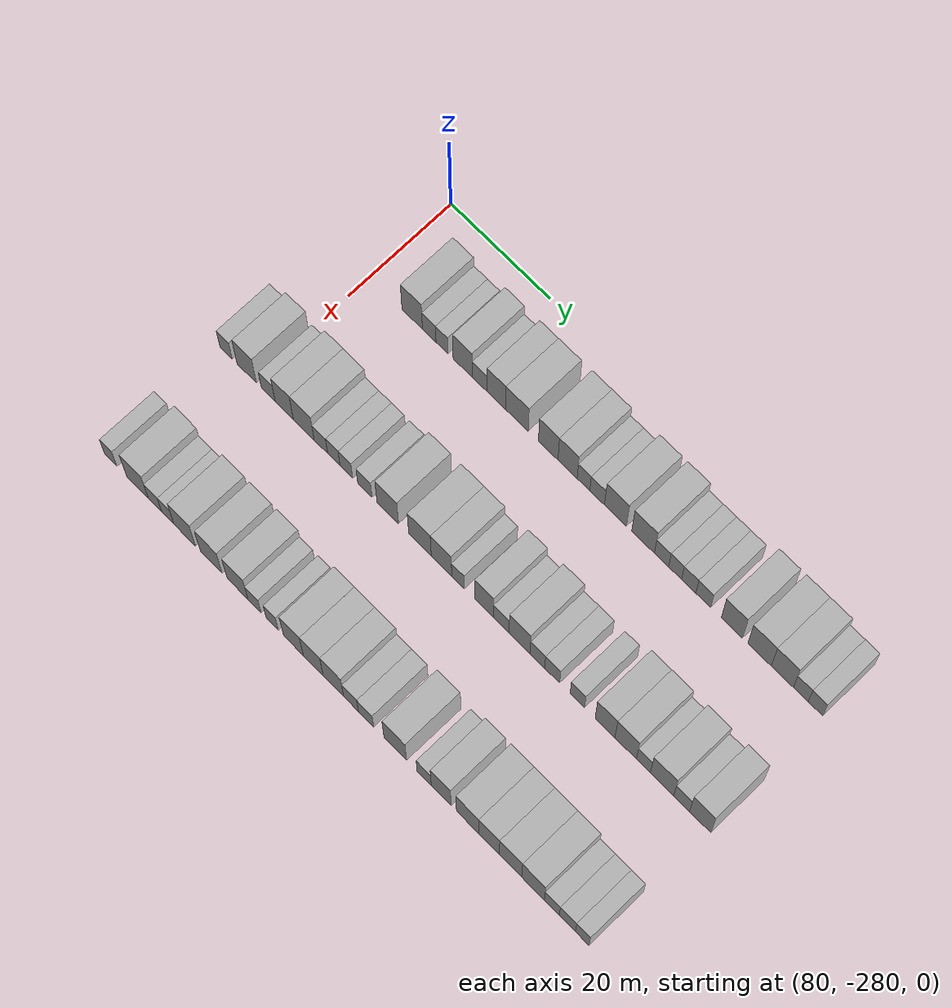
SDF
<sdf version="1.6">
 <world name="default">
  <model name="building_593">
   <static>1</static>
   <pose>91.0000 -271.2294 0 0.000000 0.000000 0.000000</pose>
   <link name="link">
    <pose>0 0 4.50 0 0 0</pose>
    <collision name="collision"><geometry><box><size>10.0000 4.1163 9.0000</size></box></geometry></collision>
    <visual name="visual">
     <cast_shadows>0</cast_shadows>
     <geometry><box><size>10.0000 4.1163 9.0000</size></box></geometry>
     <material>
      <script>
       <uri>model://HANNAS_wall/materials/scripts</uri>
       <uri>model://HANNAS_wall/materials/textures</uri>
       <name>vrc/HANNAS_wall</name>
      </script>
     </material>
    </visual>
   </link>
  </model>
  <model name="building_594">
   <static>1</static>
   <pose>91.0000 -267.8122 0 0.000000 0.000000 0.000000</pose>
   <link name="link">
    <pose>0 0 3.00 0 0 0</pose>
    <collision name="collision"><geometry><box><size>10.0000 2.7181 6.0000</size></box></geometry></collision>
    <visual name="visual">
     <cast_shadows>0</cast_shadows>
     <geometry><box><size>10.0000 2.7181 6.0000</size></box></geometry>
     <material>
      <script>
       <uri>model://HANNAS_wall/materials/scripts</uri>
       <uri>model://HANNAS_wall/materials/textures</uri>
       <name>vrc/HANNAS_wall</name>
      </script>
     </material>
    </visual>
   </link>
  </model>
  <model name="building_595">
   <static>1</static>
   <pose>91.0000 -265.2415 0 0.000000 0.000000 0.000000</pose>
   <link name="link">
    <pose>0 0 3.00 0 0 0</pose>
    <collision name="collision"><geometry><box><size>10.0000 2.4232 6.0000</size></box></geometry></collision>
    <visual name="visual">
     <cast_shadows>0</cast_shadows>
     <geometry><box><size>10.0000 2.4232 6.0000</size></box></geometry>
     <material>
      <script>
       <uri>model://HANNAS_wall/materials/scripts</uri>
       <uri>model://HANNAS_wall/materials/textures</uri>
       <name>vrc/HANNAS_wall</name>
      </script>
     </material>
    </visual>
   </link>
  </model>
  <model name="building_596">
   <static>1</static>
   <pose>91.0000 -261.1210 0 0.000000 0.000000 0.000000</pose>
   <link name="link">
    <pose>0 0 4.50 0 0 0</pose>
    <collision name="collision"><geometry><box><size>10.0000 3.8177 9.0000</size></box></geometry></collision>
    <visual name="visual">
     <cast_shadows>0</cast_shadows>
     <geometry><box><size>10.0000 3.8177 9.0000</size></box></geometry>
     <material>
      <script>
       <uri>model://HANNAS_wall/materials/scripts</uri>
       <uri>model://HANNAS_wall/materials/textures</uri>
       <name>vrc/HANNAS_wall</name>
      </script>
     </material>
    </visual>
   </link>
  </model>
  <model name="building_597">
   <static>1</static>
   <pose>91.0000 -257.7441 0 0.000000 0.000000 0.000000</pose>
   <link name="link">
    <pose>0 0 3.00 0 0 0</pose>
    <collision name="collision"><geometry><box><size>10.0000 2.9362 6.0000</size></box></geometry></collision>
    <visual name="visual">
     <cast_shadows>0</cast_shadows>
     <geometry><box><size>10.0000 2.9362 6.0000</size></box></geometry>
     <material>
      <script>
       <uri>model://HANNAS_wall/materials/scripts</uri>
       <uri>model://HANNAS_wall/materials/textures</uri>
       <name>vrc/HANNAS_wall</name>
      </script>
     </material>
    </visual>
   </link>
  </model>
  <model name="building_598">
   <static>1</static>
   <pose>91.0000 -254.4546 0 0.000000 0.000000 0.000000</pose>
   <link name="link">
    <pose>0 0 4.50 0 0 0</pose>
    <collision name="collision"><geometry><box><size>10.0000 3.6427 9.0000</size></box></geometry></collision>
    <visual name="visual">
     <cast_shadows>0</cast_shadows>
     <geometry><box><size>10.0000 3.6427 9.0000</size></box></geometry>
     <material>
      <script>
       <uri>model://HANNAS_wall/materials/scripts</uri>
       <uri>model://HANNAS_wall/materials/textures</uri>
       <name>vrc/HANNAS_wall</name>
      </script>
     </material>
    </visual>
   </link>
  </model>
  <model name="building_599">
   <static>1</static>
   <pose>91.0000 -250.3949 0 0.000000 0.000000 0.000000</pose>
   <link name="link">
    <pose>0 0 4.50 0 0 0</pose>
    <collision name="collision"><geometry><box><size>10.0000 4.4767 9.0000</size></box></geometry></collision>
    <visual name="visual">
     <cast_shadows>0</cast_shadows>
     <geometry><box><size>10.0000 4.4767 9.0000</size></box></geometry>
     <material>
      <script>
       <uri>model://HANNAS_wall/materials/scripts</uri>
       <uri>model://HANNAS_wall/materials/textures</uri>
       <name>vrc/HANNAS_wall</name>
      </script>
     </material>
    </visual>
   </link>
  </model>
  <model name="building_600">
   <static>1</static>
   <pose>91.0000 -244.2463 0 0.000000 0.000000 0.000000</pose>
   <link name="link">
    <pose>0 0 4.50 0 0 0</pose>
    <collision name="collision"><geometry><box><size>10.0000 3.8206 9.0000</size></box></geometry></collision>
    <visual name="visual">
     <cast_shadows>0</cast_shadows>
     <geometry><box><size>10.0000 3.8206 9.0000</size></box></geometry>
     <material>
      <script>
       <uri>model://HANNAS_wall/materials/scripts</uri>
       <uri>model://HANNAS_wall/materials/textures</uri>
       <name>vrc/HANNAS_wall</name>
      </script>
     </material>
    </visual>
   </link>
  </model>
  <model name="building_601">
   <static>1</static>
   <pose>91.0000 -240.4685 0 0.000000 0.000000 0.000000</pose>
   <link name="link">
    <pose>0 0 4.50 0 0 0</pose>
    <collision name="collision"><geometry><box><size>10.0000 3.7350 9.0000</size></box></geometry></collision>
    <visual name="visual">
     <cast_shadows>0</cast_shadows>
     <geometry><box><size>10.0000 3.7350 9.0000</size></box></geometry>
     <material>
      <script>
       <uri>model://HANNAS_wall/materials/scripts</uri>
       <uri>model://HANNAS_wall/materials/textures</uri>
       <name>vrc/HANNAS_wall</name>
      </script>
     </material>
    </visual>
   </link>
  </model>
  <model name="building_602">
   <static>1</static>
   <pose>91.0000 -237.3735 0 0.000000 0.000000 0.000000</pose>
   <link name="link">
    <pose>0 0 3.00 0 0 0</pose>
    <collision name="collision"><geometry><box><size>10.0000 2.4550 6.0000</size></box></geometry></collision>
    <visual name="visual">
     <cast_shadows>0</cast_shadows>
     <geometry><box><size>10.0000 2.4550 6.0000</size></box></geometry>
     <material>
      <script>
       <uri>model://HANNAS_wall/materials/scripts</uri>
       <uri>model://HANNAS_wall/materials/textures</uri>
       <name>vrc/HANNAS_wall</name>
      </script>
     </material>
    </visual>
   </link>
  </model>
  <model name="building_603">
   <static>1</static>
   <pose>91.0000 -234.7247 0 0.000000 0.000000 0.000000</pose>
   <link name="link">
    <pose>0 0 3.00 0 0 0</pose>
    <collision name="collision"><geometry><box><size>10.0000 2.8425 6.0000</size></box></geometry></collision>
    <visual name="visual">
     <cast_shadows>0</cast_shadows>
     <geometry><box><size>10.0000 2.8425 6.0000</size></box></geometry>
     <material>
      <script>
       <uri>model://HANNAS_wall/materials/scripts</uri>
       <uri>model://HANNAS_wall/materials/textures</uri>
       <name>vrc/HANNAS_wall</name>
      </script>
     </material>
    </visual>
   </link>
  </model>
  <model name="building_604">
   <static>1</static>
   <pose>91.0000 -231.1749 0 0.000000 0.000000 0.000000</pose>
   <link name="link">
    <pose>0 0 4.50 0 0 0</pose>
    <collision name="collision"><geometry><box><size>10.0000 4.2571 9.0000</size></box></geometry></collision>
    <visual name="visual">
     <cast_shadows>0</cast_shadows>
     <geometry><box><size>10.0000 4.2571 9.0000</size></box></geometry>
     <material>
      <script>
       <uri>model://HANNAS_wall/materials/scripts</uri>
       <uri>model://HANNAS_wall/materials/textures</uri>
       <name>vrc/HANNAS_wall</name>
      </script>
     </material>
    </visual>
   </link>
  </model>
  <model name="building_605">
   <static>1</static>
   <pose>91.0000 -225.8678 0 0.000000 0.000000 0.000000</pose>
   <link name="link">
    <pose>0 0 4.50 0 0 0</pose>
    <collision name="collision"><geometry><box><size>10.0000 4.3571 9.0000</size></box></geometry></collision>
    <visual name="visual">
     <cast_shadows>0</cast_shadows>
     <geometry><box><size>10.0000 4.3571 9.0000</size></box></geometry>
     <material>
      <script>
       <uri>model://HANNAS_wall/materials/scripts</uri>
       <uri>model://HANNAS_wall/materials/textures</uri>
       <name>vrc/HANNAS_wall</name>
      </script>
     </material>
    </visual>
   </link>
  </model>
  <model name="building_606">
   <static>1</static>
   <pose>91.0000 -222.3363 0 0.000000 0.000000 0.000000</pose>
   <link name="link">
    <pose>0 0 3.00 0 0 0</pose>
    <collision name="collision"><geometry><box><size>10.0000 2.7061 6.0000</size></box></geometry></collision>
    <visual name="visual">
     <cast_shadows>0</cast_shadows>
     <geometry><box><size>10.0000 2.7061 6.0000</size></box></geometry>
     <material>
      <script>
       <uri>model://HANNAS_wall/materials/scripts</uri>
       <uri>model://HANNAS_wall/materials/textures</uri>
       <name>vrc/HANNAS_wall</name>
      </script>
     </material>
    </visual>
   </link>
  </model>
  <model name="building_607">
   <static>1</static>
   <pose>91.0000 -219.7474 0 0.000000 0.000000 0.000000</pose>
   <link name="link">
    <pose>0 0 3.00 0 0 0</pose>
    <collision name="collision"><geometry><box><size>10.0000 2.4717 6.0000</size></box></geometry></collision>
    <visual name="visual">
     <cast_shadows>0</cast_shadows>
     <geometry><box><size>10.0000 2.4717 6.0000</size></box></geometry>
     <material>
      <script>
       <uri>model://HANNAS_wall/materials/scripts</uri>
       <uri>model://HANNAS_wall/materials/textures</uri>
       <name>vrc/HANNAS_wall</name>
      </script>
     </material>
    </visual>
   </link>
  </model>
  <model name="building_608">
   <static>1</static>
   <pose>91.0000 -217.1647 0 0.000000 0.000000 0.000000</pose>
   <link name="link">
    <pose>0 0 3.00 0 0 0</pose>
    <collision name="collision"><geometry><box><size>10.0000 2.6937 6.0000</size></box></geometry></collision>
    <visual name="visual">
     <cast_shadows>0</cast_shadows>
     <geometry><box><size>10.0000 2.6937 6.0000</size></box></geometry>
     <material>
      <script>
       <uri>model://HANNAS_wall/materials/scripts</uri>
       <uri>model://HANNAS_wall/materials/textures</uri>
       <name>vrc/HANNAS_wall</name>
      </script>
     </material>
    </visual>
   </link>
  </model>
  <model name="building_609">
   <static>1</static>
   <pose>91.0000 -214.4028 0 0.000000 0.000000 0.000000</pose>
   <link name="link">
    <pose>0 0 3.00 0 0 0</pose>
    <collision name="collision"><geometry><box><size>10.0000 2.8301 6.0000</size></box></geometry></collision>
    <visual name="visual">
     <cast_shadows>0</cast_shadows>
     <geometry><box><size>10.0000 2.8301 6.0000</size></box></geometry>
     <material>
      <script>
       <uri>model://HANNAS_wall/materials/scripts</uri>
       <uri>model://HANNAS_wall/materials/textures</uri>
       <name>vrc/HANNAS_wall</name>
      </script>
     </material>
    </visual>
   </link>
  </model>
  <model name="building_610">
   <static>1</static>
   <pose>91.0000 -208.9983 0 0.000000 0.000000 0.000000</pose>
   <link name="link">
    <pose>0 0 4.50 0 0 0</pose>
    <collision name="collision"><geometry><box><size>10.0000 3.9790 9.0000</size></box></geometry></collision>
    <visual name="visual">
     <cast_shadows>0</cast_shadows>
     <geometry><box><size>10.0000 3.9790 9.0000</size></box></geometry>
     <material>
      <script>
       <uri>model://HANNAS_wall/materials/scripts</uri>
       <uri>model://HANNAS_wall/materials/textures</uri>
       <name>vrc/HANNAS_wall</name>
      </script>
     </material>
    </visual>
   </link>
  </model>
  <model name="building_611">
   <static>1</static>
   <pose>91.0000 -203.8146 0 0.000000 0.000000 0.000000</pose>
   <link name="link">
    <pose>0 0 4.50 0 0 0</pose>
    <collision name="collision"><geometry><box><size>10.0000 4.3884 9.0000</size></box></geometry></collision>
    <visual name="visual">
     <cast_shadows>0</cast_shadows>
     <geometry><box><size>10.0000 4.3884 9.0000</size></box></geometry>
     <material>
      <script>
       <uri>model://HANNAS_wall/materials/scripts</uri>
       <uri>model://HANNAS_wall/materials/textures</uri>
       <name>vrc/HANNAS_wall</name>
      </script>
     </material>
    </visual>
   </link>
  </model>
  <model name="building_612">
   <static>1</static>
   <pose>91.0000 -199.5605 0 0.000000 0.000000 0.000000</pose>
   <link name="link">
    <pose>0 0 4.50 0 0 0</pose>
    <collision name="collision"><geometry><box><size>10.0000 4.1198 9.0000</size></box></geometry></collision>
    <visual name="visual">
     <cast_shadows>0</cast_shadows>
     <geometry><box><size>10.0000 4.1198 9.0000</size></box></geometry>
     <material>
      <script>
       <uri>model://HANNAS_wall/materials/scripts</uri>
       <uri>model://HANNAS_wall/materials/textures</uri>
       <name>vrc/HANNAS_wall</name>
      </script>
     </material>
    </visual>
   </link>
  </model>
  <model name="building_613">
   <static>1</static>
   <pose>91.0000 -196.1212 0 0.000000 0.000000 0.000000</pose>
   <link name="link">
    <pose>0 0 3.00 0 0 0</pose>
    <collision name="collision"><geometry><box><size>10.0000 2.7588 6.0000</size></box></geometry></collision>
    <visual name="visual">
     <cast_shadows>0</cast_shadows>
     <geometry><box><size>10.0000 2.7588 6.0000</size></box></geometry>
     <material>
      <script>
       <uri>model://HANNAS_wall/materials/scripts</uri>
       <uri>model://HANNAS_wall/materials/textures</uri>
       <name>vrc/HANNAS_wall</name>
      </script>
     </material>
    </visual>
   </link>
  </model>
  <model name="building_614">
   <static>1</static>
   <pose>91.0000 -193.3898 0 0.000000 0.000000 0.000000</pose>
   <link name="link">
    <pose>0 0 3.00 0 0 0</pose>
    <collision name="collision"><geometry><box><size>10.0000 2.7041 6.0000</size></box></geometry></collision>
    <visual name="visual">
     <cast_shadows>0</cast_shadows>
     <geometry><box><size>10.0000 2.7041 6.0000</size></box></geometry>
     <material>
      <script>
       <uri>model://HANNAS_wall/materials/scripts</uri>
       <uri>model://HANNAS_wall/materials/textures</uri>
       <name>vrc/HANNAS_wall</name>
      </script>
     </material>
    </visual>
   </link>
  </model>
  <model name="building_788">
   <static>1</static>
   <pose>113.0000 -285.6176 0 0.000000 0.000000 0.000000</pose>
   <link name="link">
    <pose>0 0 3.00 0 0 0</pose>
    <collision name="collision"><geometry><box><size>10.0000 2.5090 6.0000</size></box></geometry></collision>
    <visual name="visual">
     <cast_shadows>0</cast_shadows>
     <geometry><box><size>10.0000 2.5090 6.0000</size></box></geometry>
     <material>
      <script>
       <uri>model://HANNAS_wall/materials/scripts</uri>
       <uri>model://HANNAS_wall/materials/textures</uri>
       <name>vrc/HANNAS_wall</name>
      </script>
     </material>
    </visual>
   </link>
  </model>
  <model name="building_789">
   <static>1</static>
   <pose>113.0000 -281.3861 0 0.000000 0.000000 0.000000</pose>
   <link name="link">
    <pose>0 0 4.50 0 0 0</pose>
    <collision name="collision"><geometry><box><size>10.0000 3.9538 9.0000</size></box></geometry></collision>
    <visual name="visual">
     <cast_shadows>0</cast_shadows>
     <geometry><box><size>10.0000 3.9538 9.0000</size></box></geometry>
     <material>
      <script>
       <uri>model://HANNAS_wall/materials/scripts</uri>
       <uri>model://HANNAS_wall/materials/textures</uri>
       <name>vrc/HANNAS_wall</name>
      </script>
     </material>
    </visual>
   </link>
  </model>
  <model name="building_790">
   <static>1</static>
   <pose>113.0000 -277.0074 0 0.000000 0.000000 0.000000</pose>
   <link name="link">
    <pose>0 0 3.00 0 0 0</pose>
    <collision name="collision"><geometry><box><size>10.0000 2.8036 6.0000</size></box></geometry></collision>
    <visual name="visual">
     <cast_shadows>0</cast_shadows>
     <geometry><box><size>10.0000 2.8036 6.0000</size></box></geometry>
     <material>
      <script>
       <uri>model://HANNAS_wall/materials/scripts</uri>
       <uri>model://HANNAS_wall/materials/textures</uri>
       <name>vrc/HANNAS_wall</name>
      </script>
     </material>
    </visual>
   </link>
  </model>
  <model name="building_791">
   <static>1</static>
   <pose>113.0000 -273.7719 0 0.000000 0.000000 0.000000</pose>
   <link name="link">
    <pose>0 0 4.50 0 0 0</pose>
    <collision name="collision"><geometry><box><size>10.0000 3.6674 9.0000</size></box></geometry></collision>
    <visual name="visual">
     <cast_shadows>0</cast_shadows>
     <geometry><box><size>10.0000 3.6674 9.0000</size></box></geometry>
     <material>
      <script>
       <uri>model://HANNAS_wall/materials/scripts</uri>
       <uri>model://HANNAS_wall/materials/textures</uri>
       <name>vrc/HANNAS_wall</name>
      </script>
     </material>
    </visual>
   </link>
  </model>
  <model name="building_792">
   <static>1</static>
   <pose>113.0000 -269.8397 0 0.000000 0.000000 0.000000</pose>
   <link name="link">
    <pose>0 0 4.50 0 0 0</pose>
    <collision name="collision"><geometry><box><size>10.0000 4.1970 9.0000</size></box></geometry></collision>
    <visual name="visual">
     <cast_shadows>0</cast_shadows>
     <geometry><box><size>10.0000 4.1970 9.0000</size></box></geometry>
     <material>
      <script>
       <uri>model://HANNAS_wall/materials/scripts</uri>
       <uri>model://HANNAS_wall/materials/textures</uri>
       <name>vrc/HANNAS_wall</name>
      </script>
     </material>
    </visual>
   </link>
  </model>
  <model name="building_793">
   <static>1</static>
   <pose>113.0000 -266.3840 0 0.000000 0.000000 0.000000</pose>
   <link name="link">
    <pose>0 0 3.00 0 0 0</pose>
    <collision name="collision"><geometry><box><size>10.0000 2.7145 6.0000</size></box></geometry></collision>
    <visual name="visual">
     <cast_shadows>0</cast_shadows>
     <geometry><box><size>10.0000 2.7145 6.0000</size></box></geometry>
     <material>
      <script>
       <uri>model://HANNAS_wall/materials/scripts</uri>
       <uri>model://HANNAS_wall/materials/textures</uri>
       <name>vrc/HANNAS_wall</name>
      </script>
     </material>
    </visual>
   </link>
  </model>
  <model name="building_794">
   <static>1</static>
   <pose>113.0000 -263.7872 0 0.000000 0.000000 0.000000</pose>
   <link name="link">
    <pose>0 0 3.00 0 0 0</pose>
    <collision name="collision"><geometry><box><size>10.0000 2.4791 6.0000</size></box></geometry></collision>
    <visual name="visual">
     <cast_shadows>0</cast_shadows>
     <geometry><box><size>10.0000 2.4791 6.0000</size></box></geometry>
     <material>
      <script>
       <uri>model://HANNAS_wall/materials/scripts</uri>
       <uri>model://HANNAS_wall/materials/textures</uri>
       <name>vrc/HANNAS_wall</name>
      </script>
     </material>
    </visual>
   </link>
  </model>
  <model name="building_795">
   <static>1</static>
   <pose>113.0000 -261.2859 0 0.000000 0.000000 0.000000</pose>
   <link name="link">
    <pose>0 0 3.00 0 0 0</pose>
    <collision name="collision"><geometry><box><size>10.0000 2.5234 6.0000</size></box></geometry></collision>
    <visual name="visual">
     <cast_shadows>0</cast_shadows>
     <geometry><box><size>10.0000 2.5234 6.0000</size></box></geometry>
     <material>
      <script>
       <uri>model://HANNAS_wall/materials/scripts</uri>
       <uri>model://HANNAS_wall/materials/textures</uri>
       <name>vrc/HANNAS_wall</name>
      </script>
     </material>
    </visual>
   </link>
  </model>
  <model name="building_796">
   <static>1</static>
   <pose>113.0000 -257.6084 0 0.000000 0.000000 0.000000</pose>
   <link name="link">
    <pose>0 0 3.00 0 0 0</pose>
    <collision name="collision"><geometry><box><size>10.0000 2.8315 6.0000</size></box></geometry></collision>
    <visual name="visual">
     <cast_shadows>0</cast_shadows>
     <geometry><box><size>10.0000 2.8315 6.0000</size></box></geometry>
     <material>
      <script>
       <uri>model://HANNAS_wall/materials/scripts</uri>
       <uri>model://HANNAS_wall/materials/textures</uri>
       <name>vrc/HANNAS_wall</name>
      </script>
     </material>
    </visual>
   </link>
  </model>
  <model name="building_797">
   <static>1</static>
   <pose>113.0000 -253.0619 0 0.000000 0.000000 0.000000</pose>
   <link name="link">
    <pose>0 0 4.50 0 0 0</pose>
    <collision name="collision"><geometry><box><size>10.0000 4.2616 9.0000</size></box></geometry></collision>
    <visual name="visual">
     <cast_shadows>0</cast_shadows>
     <geometry><box><size>10.0000 4.2616 9.0000</size></box></geometry>
     <material>
      <script>
       <uri>model://HANNAS_wall/materials/scripts</uri>
       <uri>model://HANNAS_wall/materials/textures</uri>
       <name>vrc/HANNAS_wall</name>
      </script>
     </material>
    </visual>
   </link>
  </model>
  <model name="building_798">
   <static>1</static>
   <pose>113.0000 -246.7165 0 0.000000 0.000000 0.000000</pose>
   <link name="link">
    <pose>0 0 4.50 0 0 0</pose>
    <collision name="collision"><geometry><box><size>10.0000 4.4291 9.0000</size></box></geometry></collision>
    <visual name="visual">
     <cast_shadows>0</cast_shadows>
     <geometry><box><size>10.0000 4.4291 9.0000</size></box></geometry>
     <material>
      <script>
       <uri>model://HANNAS_wall/materials/scripts</uri>
       <uri>model://HANNAS_wall/materials/textures</uri>
       <name>vrc/HANNAS_wall</name>
      </script>
     </material>
    </visual>
   </link>
  </model>
  <model name="building_799">
   <static>1</static>
   <pose>113.0000 -242.5021 0 0.000000 0.000000 0.000000</pose>
   <link name="link">
    <pose>0 0 4.50 0 0 0</pose>
    <collision name="collision"><geometry><box><size>10.0000 3.9999 9.0000</size></box></geometry></collision>
    <visual name="visual">
     <cast_shadows>0</cast_shadows>
     <geometry><box><size>10.0000 3.9999 9.0000</size></box></geometry>
     <material>
      <script>
       <uri>model://HANNAS_wall/materials/scripts</uri>
       <uri>model://HANNAS_wall/materials/textures</uri>
       <name>vrc/HANNAS_wall</name>
      </script>
     </material>
    </visual>
   </link>
  </model>
  <model name="building_800">
   <static>1</static>
   <pose>113.0000 -239.2719 0 0.000000 0.000000 0.000000</pose>
   <link name="link">
    <pose>0 0 3.00 0 0 0</pose>
    <collision name="collision"><geometry><box><size>10.0000 2.4605 6.0000</size></box></geometry></collision>
    <visual name="visual">
     <cast_shadows>0</cast_shadows>
     <geometry><box><size>10.0000 2.4605 6.0000</size></box></geometry>
     <material>
      <script>
       <uri>model://HANNAS_wall/materials/scripts</uri>
       <uri>model://HANNAS_wall/materials/textures</uri>
       <name>vrc/HANNAS_wall</name>
      </script>
     </material>
    </visual>
   </link>
  </model>
  <model name="building_801">
   <static>1</static>
   <pose>113.0000 -234.2274 0 0.000000 0.000000 0.000000</pose>
   <link name="link">
    <pose>0 0 4.50 0 0 0</pose>
    <collision name="collision"><geometry><box><size>10.0000 3.6283 9.0000</size></box></geometry></collision>
    <visual name="visual">
     <cast_shadows>0</cast_shadows>
     <geometry><box><size>10.0000 3.6283 9.0000</size></box></geometry>
     <material>
      <script>
       <uri>model://HANNAS_wall/materials/scripts</uri>
       <uri>model://HANNAS_wall/materials/textures</uri>
       <name>vrc/HANNAS_wall</name>
      </script>
     </material>
    </visual>
   </link>
  </model>
  <model name="building_802">
   <static>1</static>
   <pose>113.0000 -230.9135 0 0.000000 0.000000 0.000000</pose>
   <link name="link">
    <pose>0 0 3.00 0 0 0</pose>
    <collision name="collision"><geometry><box><size>10.0000 2.9995 6.0000</size></box></geometry></collision>
    <visual name="visual">
     <cast_shadows>0</cast_shadows>
     <geometry><box><size>10.0000 2.9995 6.0000</size></box></geometry>
     <material>
      <script>
       <uri>model://HANNAS_wall/materials/scripts</uri>
       <uri>model://HANNAS_wall/materials/textures</uri>
       <name>vrc/HANNAS_wall</name>
      </script>
     </material>
    </visual>
   </link>
  </model>
  <model name="building_803">
   <static>1</static>
   <pose>113.0000 -227.4012 0 0.000000 0.000000 0.000000</pose>
   <link name="link">
    <pose>0 0 4.50 0 0 0</pose>
    <collision name="collision"><geometry><box><size>10.0000 4.0250 9.0000</size></box></geometry></collision>
    <visual name="visual">
     <cast_shadows>0</cast_shadows>
     <geometry><box><size>10.0000 4.0250 9.0000</size></box></geometry>
     <material>
      <script>
       <uri>model://HANNAS_wall/materials/scripts</uri>
       <uri>model://HANNAS_wall/materials/textures</uri>
       <name>vrc/HANNAS_wall</name>
      </script>
     </material>
    </visual>
   </link>
  </model>
  <model name="building_804">
   <static>1</static>
   <pose>113.0000 -223.9808 0 0.000000 0.000000 0.000000</pose>
   <link name="link">
    <pose>0 0 3.00 0 0 0</pose>
    <collision name="collision"><geometry><box><size>10.0000 2.8159 6.0000</size></box></geometry></collision>
    <visual name="visual">
     <cast_shadows>0</cast_shadows>
     <geometry><box><size>10.0000 2.8159 6.0000</size></box></geometry>
     <material>
      <script>
       <uri>model://HANNAS_wall/materials/scripts</uri>
       <uri>model://HANNAS_wall/materials/textures</uri>
       <name>vrc/HANNAS_wall</name>
      </script>
     </material>
    </visual>
   </link>
  </model>
  <model name="building_805">
   <static>1</static>
   <pose>113.0000 -221.1486 0 0.000000 0.000000 0.000000</pose>
   <link name="link">
    <pose>0 0 3.00 0 0 0</pose>
    <collision name="collision"><geometry><box><size>10.0000 2.8485 6.0000</size></box></geometry></collision>
    <visual name="visual">
     <cast_shadows>0</cast_shadows>
     <geometry><box><size>10.0000 2.8485 6.0000</size></box></geometry>
     <material>
      <script>
       <uri>model://HANNAS_wall/materials/scripts</uri>
       <uri>model://HANNAS_wall/materials/textures</uri>
       <name>vrc/HANNAS_wall</name>
      </script>
     </material>
    </visual>
   </link>
  </model>
  <model name="building_806">
   <static>1</static>
   <pose>113.0000 -216.3543 0 0.000000 0.000000 0.000000</pose>
   <link name="link">
    <pose>0 0 3.00 0 0 0</pose>
    <collision name="collision"><geometry><box><size>10.0000 2.7402 6.0000</size></box></geometry></collision>
    <visual name="visual">
     <cast_shadows>0</cast_shadows>
     <geometry><box><size>10.0000 2.7402 6.0000</size></box></geometry>
     <material>
      <script>
       <uri>model://HANNAS_wall/materials/scripts</uri>
       <uri>model://HANNAS_wall/materials/textures</uri>
       <name>vrc/HANNAS_wall</name>
      </script>
     </material>
    </visual>
   </link>
  </model>
  <model name="building_807">
   <static>1</static>
   <pose>113.0000 -211.1216 0 0.000000 0.000000 0.000000</pose>
   <link name="link">
    <pose>0 0 4.50 0 0 0</pose>
    <collision name="collision"><geometry><box><size>10.0000 3.7253 9.0000</size></box></geometry></collision>
    <visual name="visual">
     <cast_shadows>0</cast_shadows>
     <geometry><box><size>10.0000 3.7253 9.0000</size></box></geometry>
     <material>
      <script>
       <uri>model://HANNAS_wall/materials/scripts</uri>
       <uri>model://HANNAS_wall/materials/textures</uri>
       <name>vrc/HANNAS_wall</name>
      </script>
     </material>
    </visual>
   </link>
  </model>
  <model name="building_808">
   <static>1</static>
   <pose>113.0000 -207.2380 0 0.000000 0.000000 0.000000</pose>
   <link name="link">
    <pose>0 0 4.50 0 0 0</pose>
    <collision name="collision"><geometry><box><size>10.0000 4.0418 9.0000</size></box></geometry></collision>
    <visual name="visual">
     <cast_shadows>0</cast_shadows>
     <geometry><box><size>10.0000 4.0418 9.0000</size></box></geometry>
     <material>
      <script>
       <uri>model://HANNAS_wall/materials/scripts</uri>
       <uri>model://HANNAS_wall/materials/textures</uri>
       <name>vrc/HANNAS_wall</name>
      </script>
     </material>
    </visual>
   </link>
  </model>
  <model name="building_809">
   <static>1</static>
   <pose>113.0000 -203.9116 0 0.000000 0.000000 0.000000</pose>
   <link name="link">
    <pose>0 0 3.00 0 0 0</pose>
    <collision name="collision"><geometry><box><size>10.0000 2.6111 6.0000</size></box></geometry></collision>
    <visual name="visual">
     <cast_shadows>0</cast_shadows>
     <geometry><box><size>10.0000 2.6111 6.0000</size></box></geometry>
     <material>
      <script>
       <uri>model://HANNAS_wall/materials/scripts</uri>
       <uri>model://HANNAS_wall/materials/textures</uri>
       <name>vrc/HANNAS_wall</name>
      </script>
     </material>
    </visual>
   </link>
  </model>
  <model name="building_810">
   <static>1</static>
   <pose>113.0000 -200.4352 0 0.000000 0.000000 0.000000</pose>
   <link name="link">
    <pose>0 0 4.50 0 0 0</pose>
    <collision name="collision"><geometry><box><size>10.0000 4.3417 9.0000</size></box></geometry></collision>
    <visual name="visual">
     <cast_shadows>0</cast_shadows>
     <geometry><box><size>10.0000 4.3417 9.0000</size></box></geometry>
     <material>
      <script>
       <uri>model://HANNAS_wall/materials/scripts</uri>
       <uri>model://HANNAS_wall/materials/textures</uri>
       <name>vrc/HANNAS_wall</name>
      </script>
     </material>
    </visual>
   </link>
  </model>
  <model name="building_811">
   <static>1</static>
   <pose>113.0000 -196.7822 0 0.000000 0.000000 0.000000</pose>
   <link name="link">
    <pose>0 0 3.00 0 0 0</pose>
    <collision name="collision"><geometry><box><size>10.0000 2.9644 6.0000</size></box></geometry></collision>
    <visual name="visual">
     <cast_shadows>0</cast_shadows>
     <geometry><box><size>10.0000 2.9644 6.0000</size></box></geometry>
     <material>
      <script>
       <uri>model://HANNAS_wall/materials/scripts</uri>
       <uri>model://HANNAS_wall/materials/textures</uri>
       <name>vrc/HANNAS_wall</name>
      </script>
     </material>
    </visual>
   </link>
  </model>
  <model name="building_812">
   <static>1</static>
   <pose>113.0000 -193.3380 0 0.000000 0.000000 0.000000</pose>
   <link name="link">
    <pose>0 0 4.50 0 0 0</pose>
    <collision name="collision"><geometry><box><size>10.0000 3.9241 9.0000</size></box></geometry></collision>
    <visual name="visual">
     <cast_shadows>0</cast_shadows>
     <geometry><box><size>10.0000 3.9241 9.0000</size></box></geometry>
     <material>
      <script>
       <uri>model://HANNAS_wall/materials/scripts</uri>
       <uri>model://HANNAS_wall/materials/textures</uri>
       <name>vrc/HANNAS_wall</name>
      </script>
     </material>
    </visual>
   </link>
  </model>
  <model name="building_982">
   <static>1</static>
   <pose>135.0000 -285.0278 0 0.000000 0.000000 0.000000</pose>
   <link name="link">
    <pose>0 0 3.00 0 0 0</pose>
    <collision name="collision"><geometry><box><size>10.0000 2.4911 6.0000</size></box></geometry></collision>
    <visual name="visual">
     <cast_shadows>0</cast_shadows>
     <geometry><box><size>10.0000 2.4911 6.0000</size></box></geometry>
     <material>
      <script>
       <uri>model://HANNAS_wall/materials/scripts</uri>
       <uri>model://HANNAS_wall/materials/textures</uri>
       <name>vrc/HANNAS_wall</name>
      </script>
     </material>
    </visual>
   </link>
  </model>
  <model name="building_983">
   <static>1</static>
   <pose>135.0000 -279.5717 0 0.000000 0.000000 0.000000</pose>
   <link name="link">
    <pose>0 0 4.50 0 0 0</pose>
    <collision name="collision"><geometry><box><size>10.0000 4.4213 9.0000</size></box></geometry></collision>
    <visual name="visual">
     <cast_shadows>0</cast_shadows>
     <geometry><box><size>10.0000 4.4213 9.0000</size></box></geometry>
     <material>
      <script>
       <uri>model://HANNAS_wall/materials/scripts</uri>
       <uri>model://HANNAS_wall/materials/textures</uri>
       <name>vrc/HANNAS_wall</name>
      </script>
     </material>
    </visual>
   </link>
  </model>
  <model name="building_984">
   <static>1</static>
   <pose>135.0000 -276.0005 0 0.000000 0.000000 0.000000</pose>
   <link name="link">
    <pose>0 0 3.00 0 0 0</pose>
    <collision name="collision"><geometry><box><size>10.0000 2.7210 6.0000</size></box></geometry></collision>
    <visual name="visual">
     <cast_shadows>0</cast_shadows>
     <geometry><box><size>10.0000 2.7210 6.0000</size></box></geometry>
     <material>
      <script>
       <uri>model://HANNAS_wall/materials/scripts</uri>
       <uri>model://HANNAS_wall/materials/textures</uri>
       <name>vrc/HANNAS_wall</name>
      </script>
     </material>
    </visual>
   </link>
  </model>
  <model name="building_985">
   <static>1</static>
   <pose>135.0000 -273.4018 0 0.000000 0.000000 0.000000</pose>
   <link name="link">
    <pose>0 0 3.00 0 0 0</pose>
    <collision name="collision"><geometry><box><size>10.0000 2.4764 6.0000</size></box></geometry></collision>
    <visual name="visual">
     <cast_shadows>0</cast_shadows>
     <geometry><box><size>10.0000 2.4764 6.0000</size></box></geometry>
     <material>
      <script>
       <uri>model://HANNAS_wall/materials/scripts</uri>
       <uri>model://HANNAS_wall/materials/textures</uri>
       <name>vrc/HANNAS_wall</name>
      </script>
     </material>
    </visual>
   </link>
  </model>
  <model name="building_986">
   <static>1</static>
   <pose>135.0000 -269.9956 0 0.000000 0.000000 0.000000</pose>
   <link name="link">
    <pose>0 0 4.50 0 0 0</pose>
    <collision name="collision"><geometry><box><size>10.0000 4.3361 9.0000</size></box></geometry></collision>
    <visual name="visual">
     <cast_shadows>0</cast_shadows>
     <geometry><box><size>10.0000 4.3361 9.0000</size></box></geometry>
     <material>
      <script>
       <uri>model://HANNAS_wall/materials/scripts</uri>
       <uri>model://HANNAS_wall/materials/textures</uri>
       <name>vrc/HANNAS_wall</name>
      </script>
     </material>
    </visual>
   </link>
  </model>
  <model name="building_987">
   <static>1</static>
   <pose>135.0000 -264.6566 0 0.000000 0.000000 0.000000</pose>
   <link name="link">
    <pose>0 0 4.50 0 0 0</pose>
    <collision name="collision"><geometry><box><size>10.0000 4.3417 9.0000</size></box></geometry></collision>
    <visual name="visual">
     <cast_shadows>0</cast_shadows>
     <geometry><box><size>10.0000 4.3417 9.0000</size></box></geometry>
     <material>
      <script>
       <uri>model://HANNAS_wall/materials/scripts</uri>
       <uri>model://HANNAS_wall/materials/textures</uri>
       <name>vrc/HANNAS_wall</name>
      </script>
     </material>
    </visual>
   </link>
  </model>
  <model name="building_988">
   <static>1</static>
   <pose>135.0000 -259.4155 0 0.000000 0.000000 0.000000</pose>
   <link name="link">
    <pose>0 0 4.50 0 0 0</pose>
    <collision name="collision"><geometry><box><size>10.0000 4.1405 9.0000</size></box></geometry></collision>
    <visual name="visual">
     <cast_shadows>0</cast_shadows>
     <geometry><box><size>10.0000 4.1405 9.0000</size></box></geometry>
     <material>
      <script>
       <uri>model://HANNAS_wall/materials/scripts</uri>
       <uri>model://HANNAS_wall/materials/textures</uri>
       <name>vrc/HANNAS_wall</name>
      </script>
     </material>
    </visual>
   </link>
  </model>
  <model name="building_989">
   <static>1</static>
   <pose>135.0000 -256.0351 0 0.000000 0.000000 0.000000</pose>
   <link name="link">
    <pose>0 0 3.00 0 0 0</pose>
    <collision name="collision"><geometry><box><size>10.0000 2.6205 6.0000</size></box></geometry></collision>
    <visual name="visual">
     <cast_shadows>0</cast_shadows>
     <geometry><box><size>10.0000 2.6205 6.0000</size></box></geometry>
     <material>
      <script>
       <uri>model://HANNAS_wall/materials/scripts</uri>
       <uri>model://HANNAS_wall/materials/textures</uri>
       <name>vrc/HANNAS_wall</name>
      </script>
     </material>
    </visual>
   </link>
  </model>
  <model name="building_990">
   <static>1</static>
   <pose>135.0000 -252.5203 0 0.000000 0.000000 0.000000</pose>
   <link name="link">
    <pose>0 0 3.00 0 0 0</pose>
    <collision name="collision"><geometry><box><size>10.0000 2.4090 6.0000</size></box></geometry></collision>
    <visual name="visual">
     <cast_shadows>0</cast_shadows>
     <geometry><box><size>10.0000 2.4090 6.0000</size></box></geometry>
     <material>
      <script>
       <uri>model://HANNAS_wall/materials/scripts</uri>
       <uri>model://HANNAS_wall/materials/textures</uri>
       <name>vrc/HANNAS_wall</name>
      </script>
     </material>
    </visual>
   </link>
  </model>
  <model name="building_991">
   <static>1</static>
   <pose>135.0000 -248.3573 0 0.000000 0.000000 0.000000</pose>
   <link name="link">
    <pose>0 0 4.50 0 0 0</pose>
    <collision name="collision"><geometry><box><size>10.0000 3.9170 9.0000</size></box></geometry></collision>
    <visual name="visual">
     <cast_shadows>0</cast_shadows>
     <geometry><box><size>10.0000 3.9170 9.0000</size></box></geometry>
     <material>
      <script>
       <uri>model://HANNAS_wall/materials/scripts</uri>
       <uri>model://HANNAS_wall/materials/textures</uri>
       <name>vrc/HANNAS_wall</name>
      </script>
     </material>
    </visual>
   </link>
  </model>
  <model name="building_992">
   <static>1</static>
   <pose>135.0000 -244.4566 0 0.000000 0.000000 0.000000</pose>
   <link name="link">
    <pose>0 0 4.50 0 0 0</pose>
    <collision name="collision"><geometry><box><size>10.0000 3.8843 9.0000</size></box></geometry></collision>
    <visual name="visual">
     <cast_shadows>0</cast_shadows>
     <geometry><box><size>10.0000 3.8843 9.0000</size></box></geometry>
     <material>
      <script>
       <uri>model://HANNAS_wall/materials/scripts</uri>
       <uri>model://HANNAS_wall/materials/textures</uri>
       <name>vrc/HANNAS_wall</name>
      </script>
     </material>
    </visual>
   </link>
  </model>
  <model name="building_993">
   <static>1</static>
   <pose>135.0000 -240.5119 0 0.000000 0.000000 0.000000</pose>
   <link name="link">
    <pose>0 0 4.50 0 0 0</pose>
    <collision name="collision"><geometry><box><size>10.0000 4.0051 9.0000</size></box></geometry></collision>
    <visual name="visual">
     <cast_shadows>0</cast_shadows>
     <geometry><box><size>10.0000 4.0051 9.0000</size></box></geometry>
     <material>
      <script>
       <uri>model://HANNAS_wall/materials/scripts</uri>
       <uri>model://HANNAS_wall/materials/textures</uri>
       <name>vrc/HANNAS_wall</name>
      </script>
     </material>
    </visual>
   </link>
  </model>
  <model name="building_994">
   <static>1</static>
   <pose>135.0000 -237.0757 0 0.000000 0.000000 0.000000</pose>
   <link name="link">
    <pose>0 0 3.00 0 0 0</pose>
    <collision name="collision"><geometry><box><size>10.0000 2.8672 6.0000</size></box></geometry></collision>
    <visual name="visual">
     <cast_shadows>0</cast_shadows>
     <geometry><box><size>10.0000 2.8672 6.0000</size></box></geometry>
     <material>
      <script>
       <uri>model://HANNAS_wall/materials/scripts</uri>
       <uri>model://HANNAS_wall/materials/textures</uri>
       <name>vrc/HANNAS_wall</name>
      </script>
     </material>
    </visual>
   </link>
  </model>
  <model name="building_995">
   <static>1</static>
   <pose>135.0000 -234.1616 0 0.000000 0.000000 0.000000</pose>
   <link name="link">
    <pose>0 0 3.00 0 0 0</pose>
    <collision name="collision"><geometry><box><size>10.0000 2.9610 6.0000</size></box></geometry></collision>
    <visual name="visual">
     <cast_shadows>0</cast_shadows>
     <geometry><box><size>10.0000 2.9610 6.0000</size></box></geometry>
     <material>
      <script>
       <uri>model://HANNAS_wall/materials/scripts</uri>
       <uri>model://HANNAS_wall/materials/textures</uri>
       <name>vrc/HANNAS_wall</name>
      </script>
     </material>
    </visual>
   </link>
  </model>
  <model name="building_996">
   <static>1</static>
   <pose>135.0000 -228.5085 0 0.000000 0.000000 0.000000</pose>
   <link name="link">
    <pose>0 0 4.50 0 0 0</pose>
    <collision name="collision"><geometry><box><size>10.0000 4.3452 9.0000</size></box></geometry></collision>
    <visual name="visual">
     <cast_shadows>0</cast_shadows>
     <geometry><box><size>10.0000 4.3452 9.0000</size></box></geometry>
     <material>
      <script>
       <uri>model://HANNAS_wall/materials/scripts</uri>
       <uri>model://HANNAS_wall/materials/textures</uri>
       <name>vrc/HANNAS_wall</name>
      </script>
     </material>
    </visual>
   </link>
  </model>
  <model name="building_997">
   <static>1</static>
   <pose>135.0000 -222.9744 0 0.000000 0.000000 0.000000</pose>
   <link name="link">
    <pose>0 0 3.00 0 0 0</pose>
    <collision name="collision"><geometry><box><size>10.0000 2.7228 6.0000</size></box></geometry></collision>
    <visual name="visual">
     <cast_shadows>0</cast_shadows>
     <geometry><box><size>10.0000 2.7228 6.0000</size></box></geometry>
     <material>
      <script>
       <uri>model://HANNAS_wall/materials/scripts</uri>
       <uri>model://HANNAS_wall/materials/textures</uri>
       <name>vrc/HANNAS_wall</name>
      </script>
     </material>
    </visual>
   </link>
  </model>
  <model name="building_998">
   <static>1</static>
   <pose>135.0000 -219.7220 0 0.000000 0.000000 0.000000</pose>
   <link name="link">
    <pose>0 0 4.50 0 0 0</pose>
    <collision name="collision"><geometry><box><size>10.0000 3.7822 9.0000</size></box></geometry></collision>
    <visual name="visual">
     <cast_shadows>0</cast_shadows>
     <geometry><box><size>10.0000 3.7822 9.0000</size></box></geometry>
     <material>
      <script>
       <uri>model://HANNAS_wall/materials/scripts</uri>
       <uri>model://HANNAS_wall/materials/textures</uri>
       <name>vrc/HANNAS_wall</name>
      </script>
     </material>
    </visual>
   </link>
  </model>
  <model name="building_999">
   <static>1</static>
   <pose>135.0000 -214.6982 0 0.000000 0.000000 0.000000</pose>
   <link name="link">
    <pose>0 0 4.50 0 0 0</pose>
    <collision name="collision"><geometry><box><size>10.0000 4.2655 9.0000</size></box></geometry></collision>
    <visual name="visual">
     <cast_shadows>0</cast_shadows>
     <geometry><box><size>10.0000 4.2655 9.0000</size></box></geometry>
     <material>
      <script>
       <uri>model://HANNAS_wall/materials/scripts</uri>
       <uri>model://HANNAS_wall/materials/textures</uri>
       <name>vrc/HANNAS_wall</name>
      </script>
     </material>
    </visual>
   </link>
  </model>
  <model name="building_1000">
   <static>1</static>
   <pose>135.0000 -210.6380 0 0.000000 0.000000 0.000000</pose>
   <link name="link">
    <pose>0 0 4.50 0 0 0</pose>
    <collision name="collision"><geometry><box><size>10.0000 3.8548 9.0000</size></box></geometry></collision>
    <visual name="visual">
     <cast_shadows>0</cast_shadows>
     <geometry><box><size>10.0000 3.8548 9.0000</size></box></geometry>
     <material>
      <script>
       <uri>model://HANNAS_wall/materials/scripts</uri>
       <uri>model://HANNAS_wall/materials/textures</uri>
       <name>vrc/HANNAS_wall</name>
      </script>
     </material>
    </visual>
   </link>
  </model>
  <model name="building_1001">
   <static>1</static>
   <pose>135.0000 -206.6090 0 0.000000 0.000000 0.000000</pose>
   <link name="link">
    <pose>0 0 4.50 0 0 0</pose>
    <collision name="collision"><geometry><box><size>10.0000 4.2033 9.0000</size></box></geometry></collision>
    <visual name="visual">
     <cast_shadows>0</cast_shadows>
     <geometry><box><size>10.0000 4.2033 9.0000</size></box></geometry>
     <material>
      <script>
       <uri>model://HANNAS_wall/materials/scripts</uri>
       <uri>model://HANNAS_wall/materials/textures</uri>
       <name>vrc/HANNAS_wall</name>
      </script>
     </material>
    </visual>
   </link>
  </model>
  <model name="building_1002">
   <static>1</static>
   <pose>135.0000 -202.3837 0 0.000000 0.000000 0.000000</pose>
   <link name="link">
    <pose>0 0 4.50 0 0 0</pose>
    <collision name="collision"><geometry><box><size>10.0000 4.2472 9.0000</size></box></geometry></collision>
    <visual name="visual">
     <cast_shadows>0</cast_shadows>
     <geometry><box><size>10.0000 4.2472 9.0000</size></box></geometry>
     <material>
      <script>
       <uri>model://HANNAS_wall/materials/scripts</uri>
       <uri>model://HANNAS_wall/materials/textures</uri>
       <name>vrc/HANNAS_wall</name>
      </script>
     </material>
    </visual>
   </link>
  </model>
  <model name="building_1003">
   <static>1</static>
   <pose>135.0000 -198.8756 0 0.000000 0.000000 0.000000</pose>
   <link name="link">
    <pose>0 0 3.00 0 0 0</pose>
    <collision name="collision"><geometry><box><size>10.0000 2.7691 6.0000</size></box></geometry></collision>
    <visual name="visual">
     <cast_shadows>0</cast_shadows>
     <geometry><box><size>10.0000 2.7691 6.0000</size></box></geometry>
     <material>
      <script>
       <uri>model://HANNAS_wall/materials/scripts</uri>
       <uri>model://HANNAS_wall/materials/textures</uri>
       <name>vrc/HANNAS_wall</name>
      </script>
     </material>
    </visual>
   </link>
  </model>
  <model name="building_1004">
   <static>1</static>
   <pose>135.0000 -196.0104 0 0.000000 0.000000 0.000000</pose>
   <link name="link">
    <pose>0 0 3.00 0 0 0</pose>
    <collision name="collision"><geometry><box><size>10.0000 2.9614 6.0000</size></box></geometry></collision>
    <visual name="visual">
     <cast_shadows>0</cast_shadows>
     <geometry><box><size>10.0000 2.9614 6.0000</size></box></geometry>
     <material>
      <script>
       <uri>model://HANNAS_wall/materials/scripts</uri>
       <uri>model://HANNAS_wall/materials/textures</uri>
       <name>vrc/HANNAS_wall</name>
      </script>
     </material>
    </visual>
   </link>
  </model>
  <model name="building_1005">
   <static>1</static>
   <pose>135.0000 -193.2582 0 0.000000 0.000000 0.000000</pose>
   <link name="link">
    <pose>0 0 3.00 0 0 0</pose>
    <collision name="collision"><geometry><box><size>10.0000 2.5429 6.0000</size></box></geometry></collision>
    <visual name="visual">
     <cast_shadows>0</cast_shadows>
     <geometry><box><size>10.0000 2.5429 6.0000</size></box></geometry>
     <material>
      <script>
       <uri>model://HANNAS_wall/materials/scripts</uri>
       <uri>model://HANNAS_wall/materials/textures</uri>
       <name>vrc/HANNAS_wall</name>
      </script>
     </material>
    </visual>
   </link>
  </model>
 </world>
</sdf>
